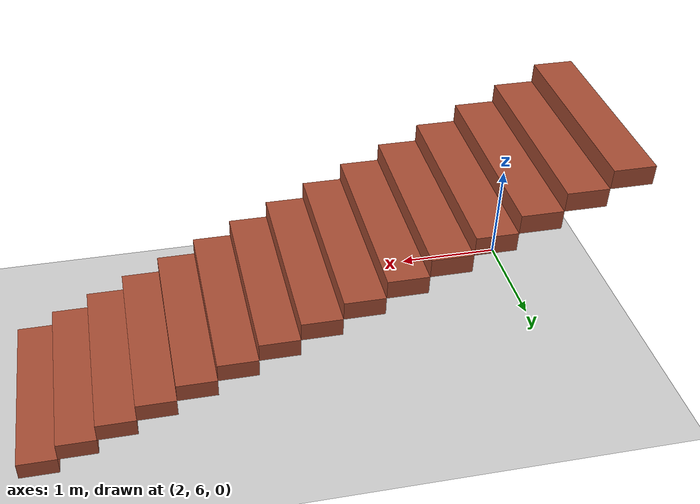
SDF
<sdf version="1.6">
 <world name="default">
  <model name="ground_plane">
   <static>1</static>
   <link name="link">
    <collision name="collision">
     <geometry><plane><normal>0 0 1</normal><size>100 100</size></plane></geometry>
     <surface>
      <contact><collide_bitmask>65535</collide_bitmask></contact>
      <friction><ode><mu>100</mu><mu2>50</mu2></ode></friction>
     </surface>
    </collision>
    <visual name="visual">
     <cast_shadows>0</cast_shadows>
     <geometry><plane><normal>0 0 1</normal><size>100 100</size></plane></geometry>
     <material>
      <script><uri>file://media/materials/scripts/gazebo.material</uri><name>Gazebo/Grey</name></script>
     </material>
    </visual>
   </link>
  </model>
  <model name="asphalt_plane">
   <static>1</static>
   <link name="link">
    <collision name="collision"><geometry><box><size>18.0246 12.9845 0.1</size></box></geometry></collision>
    <visual name="visual">
     <cast_shadows>0</cast_shadows>
     <geometry><box><size>18.0246 12.9845 0.1</size></box></geometry>
     <material>
      <script>
       <uri>model://asphalt_plane/materials/scripts</uri>
       <uri>model://asphalt_plane/materials/textures</uri>
       <name>vrc/asphalt</name>
      </script>
     </material>
    </visual>
   </link>
   <pose>0.009253 12.617 5.05625 0 -0 0</pose>
  </model>
  <model name="Indoor_Scenario1">
   <pose>0.016123 12.6195 0 0 -0 0</pose>
   <link name="Stairs_0">
    <visual name="Stairs_0_Visual_0">
     <pose>6.78522 -5.29826 0.083333 0 -0 -1.5708</pose>
     <geometry><box><size>1.7 0.349477 0.166667</size></box></geometry>
     <material>
      <script><uri>file://media/materials/scripts/gazebo.material</uri><name>Gazebo/Bricks</name></script>
      <ambient>1 1 1 1</ambient>
     </material>
     <meta><layer>0</layer></meta>
    </visual>
    <collision name="Stairs_0_Collision_0">
     <geometry><box><size>1.7 0.349477 0.166667</size></box></geometry>
     <pose>6.78522 -5.29826 0.083333 0 -0 -1.5708</pose>
    </collision>
    <visual name="Stairs_0_Visual_1">
     <pose>6.43574 -5.29826 0.25 0 -0 -1.5708</pose>
     <geometry><box><size>1.7 0.349477 0.166667</size></box></geometry>
     <material>
      <script><uri>file://media/materials/scripts/gazebo.material</uri><name>Gazebo/Bricks</name></script>
      <ambient>1 1 1 1</ambient>
     </material>
     <meta><layer>0</layer></meta>
    </visual>
    <collision name="Stairs_0_Collision_1">
     <geometry><box><size>1.7 0.349477 0.166667</size></box></geometry>
     <pose>6.43574 -5.29826 0.25 0 -0 -1.5708</pose>
    </collision>
    <visual name="Stairs_0_Visual_2">
     <pose>6.08626 -5.29826 0.416667 0 -0 -1.5708</pose>
     <geometry><box><size>1.7 0.349477 0.166667</size></box></geometry>
     <material>
      <script><uri>file://media/materials/scripts/gazebo.material</uri><name>Gazebo/Bricks</name></script>
      <ambient>1 1 1 1</ambient>
     </material>
     <meta><layer>0</layer></meta>
    </visual>
    <collision name="Stairs_0_Collision_2">
     <geometry><box><size>1.7 0.349477 0.166667</size></box></geometry>
     <pose>6.08626 -5.29826 0.416667 0 -0 -1.5708</pose>
    </collision>
    <visual name="Stairs_0_Visual_3">
     <pose>5.73679 -5.29826 0.583333 0 -0 -1.5708</pose>
     <geometry><box><size>1.7 0.349477 0.166667</size></box></geometry>
     <material>
      <script><uri>file://media/materials/scripts/gazebo.material</uri><name>Gazebo/Bricks</name></script>
      <ambient>1 1 1 1</ambient>
     </material>
     <meta><layer>0</layer></meta>
    </visual>
    <collision name="Stairs_0_Collision_3">
     <geometry><box><size>1.7 0.349477 0.166667</size></box></geometry>
     <pose>5.73679 -5.29826 0.583333 0 -0 -1.5708</pose>
    </collision>
    <visual name="Stairs_0_Visual_4">
     <pose>5.38731 -5.29826 0.75 0 -0 -1.5708</pose>
     <geometry><box><size>1.7 0.349477 0.166667</size></box></geometry>
     <material>
      <script><uri>file://media/materials/scripts/gazebo.material</uri><name>Gazebo/Bricks</name></script>
      <ambient>1 1 1 1</ambient>
     </material>
     <meta><layer>0</layer></meta>
    </visual>
    <collision name="Stairs_0_Collision_4">
     <geometry><box><size>1.7 0.349477 0.166667</size></box></geometry>
     <pose>5.38731 -5.29826 0.75 0 -0 -1.5708</pose>
    </collision>
    <visual name="Stairs_0_Visual_5">
     <pose>5.03783 -5.29826 0.916667 0 -0 -1.5708</pose>
     <geometry><box><size>1.7 0.349477 0.166667</size></box></geometry>
     <material>
      <script><uri>file://media/materials/scripts/gazebo.material</uri><name>Gazebo/Bricks</name></script>
      <ambient>1 1 1 1</ambient>
     </material>
     <meta><layer>0</layer></meta>
    </visual>
    <collision name="Stairs_0_Collision_5">
     <geometry><box><size>1.7 0.349477 0.166667</size></box></geometry>
     <pose>5.03783 -5.29826 0.916667 0 -0 -1.5708</pose>
    </collision>
    <visual name="Stairs_0_Visual_6">
     <pose>4.68835 -5.29826 1.08333 0 -0 -1.5708</pose>
     <geometry><box><size>1.7 0.349477 0.166667</size></box></geometry>
     <material>
      <script><uri>file://media/materials/scripts/gazebo.material</uri><name>Gazebo/Bricks</name></script>
      <ambient>1 1 1 1</ambient>
     </material>
     <meta><layer>0</layer></meta>
    </visual>
    <collision name="Stairs_0_Collision_6">
     <geometry><box><size>1.7 0.349477 0.166667</size></box></geometry>
     <pose>4.68835 -5.29826 1.08333 0 -0 -1.5708</pose>
    </collision>
    <visual name="Stairs_0_Visual_7">
     <pose>4.33888 -5.29826 1.25 0 -0 -1.5708</pose>
     <geometry><box><size>1.7 0.349477 0.166667</size></box></geometry>
     <material>
      <script><uri>file://media/materials/scripts/gazebo.material</uri><name>Gazebo/Bricks</name></script>
      <ambient>1 1 1 1</ambient>
     </material>
     <meta><layer>0</layer></meta>
    </visual>
    <collision name="Stairs_0_Collision_7">
     <geometry><box><size>1.7 0.349477 0.166667</size></box></geometry>
     <pose>4.33888 -5.29826 1.25 0 -0 -1.5708</pose>
    </collision>
    <visual name="Stairs_0_Visual_8">
     <pose>3.9894 -5.29826 1.41667 0 -0 -1.5708</pose>
     <geometry><box><size>1.7 0.349477 0.166667</size></box></geometry>
     <material>
      <script><uri>file://media/materials/scripts/gazebo.material</uri><name>Gazebo/Bricks</name></script>
      <ambient>1 1 1 1</ambient>
     </material>
     <meta><layer>0</layer></meta>
    </visual>
    <collision name="Stairs_0_Collision_8">
     <geometry><box><size>1.7 0.349477 0.166667</size></box></geometry>
     <pose>3.9894 -5.29826 1.41667 0 -0 -1.5708</pose>
    </collision>
    <visual name="Stairs_0_Visual_9">
     <pose>3.63992 -5.29826 1.58333 0 -0 -1.5708</pose>
     <geometry><box><size>1.7 0.349477 0.166667</size></box></geometry>
     <material>
      <script><uri>file://media/materials/scripts/gazebo.material</uri><name>Gazebo/Bricks</name></script>
      <ambient>1 1 1 1</ambient>
     </material>
     <meta><layer>0</layer></meta>
    </visual>
    <collision name="Stairs_0_Collision_9">
     <geometry><box><size>1.7 0.349477 0.166667</size></box></geometry>
     <pose>3.63992 -5.29826 1.58333 0 -0 -1.5708</pose>
    </collision>
    <visual name="Stairs_0_Visual_10">
     <pose>3.29045 -5.29826 1.75 0 -0 -1.5708</pose>
     <geometry><box><size>1.7 0.349477 0.166667</size></box></geometry>
     <material>
      <script><uri>file://media/materials/scripts/gazebo.material</uri><name>Gazebo/Bricks</name></script>
      <ambient>1 1 1 1</ambient>
     </material>
     <meta><layer>0</layer></meta>
    </visual>
    <collision name="Stairs_0_Collision_10">
     <geometry><box><size>1.7 0.349477 0.166667</size></box></geometry>
     <pose>3.29045 -5.29826 1.75 0 -0 -1.5708</pose>
    </collision>
    <visual name="Stairs_0_Visual_11">
     <pose>2.94097 -5.29826 1.91667 0 -0 -1.5708</pose>
     <geometry><box><size>1.7 0.349477 0.166667</size></box></geometry>
     <material>
      <script><uri>file://media/materials/scripts/gazebo.material</uri><name>Gazebo/Bricks</name></script>
      <ambient>1 1 1 1</ambient>
     </material>
     <meta><layer>0</layer></meta>
    </visual>
    <collision name="Stairs_0_Collision_11">
     <geometry><box><size>1.7 0.349477 0.166667</size></box></geometry>
     <pose>2.94097 -5.29826 1.91667 0 -0 -1.5708</pose>
    </collision>
    <visual name="Stairs_0_Visual_12">
     <pose>2.59149 -5.29826 2.08333 0 -0 -1.5708</pose>
     <geometry><box><size>1.7 0.349477 0.166667</size></box></geometry>
     <material>
      <script><uri>file://media/materials/scripts/gazebo.material</uri><name>Gazebo/Bricks</name></script>
      <ambient>1 1 1 1</ambient>
     </material>
     <meta><layer>0</layer></meta>
    </visual>
    <collision name="Stairs_0_Collision_12">
     <geometry><box><size>1.7 0.349477 0.166667</size></box></geometry>
     <pose>2.59149 -5.29826 2.08333 0 -0 -1.5708</pose>
    </collision>
    <visual name="Stairs_0_Visual_13">
     <pose>2.24202 -5.29826 2.25 0 -0 -1.5708</pose>
     <geometry><box><size>1.7 0.349477 0.166667</size></box></geometry>
     <material>
      <script><uri>file://media/materials/scripts/gazebo.material</uri><name>Gazebo/Bricks</name></script>
      <ambient>1 1 1 1</ambient>
     </material>
     <meta><layer>0</layer></meta>
    </visual>
    <collision name="Stairs_0_Collision_13">
     <geometry><box><size>1.7 0.349477 0.166667</size></box></geometry>
     <pose>2.24202 -5.29826 2.25 0 -0 -1.5708</pose>
    </collision>
    <visual name="Stairs_0_Visual_14">
     <pose>1.89254 -5.29826 2.41667 0 -0 -1.5708</pose>
     <geometry><box><size>1.7 0.349477 0.166667</size></box></geometry>
     <material>
      <script><uri>file://media/materials/scripts/gazebo.material</uri><name>Gazebo/Bricks</name></script>
      <ambient>1 1 1 1</ambient>
     </material>
     <meta><layer>0</layer></meta>
    </visual>
    <collision name="Stairs_0_Collision_14">
     <geometry><box><size>1.7 0.349477 0.166667</size></box></geometry>
     <pose>1.89254 -5.29826 2.41667 0 -0 -1.5708</pose>
    </collision>
   </link>
   <static>1</static>
  </model>
 </world>
</sdf>
